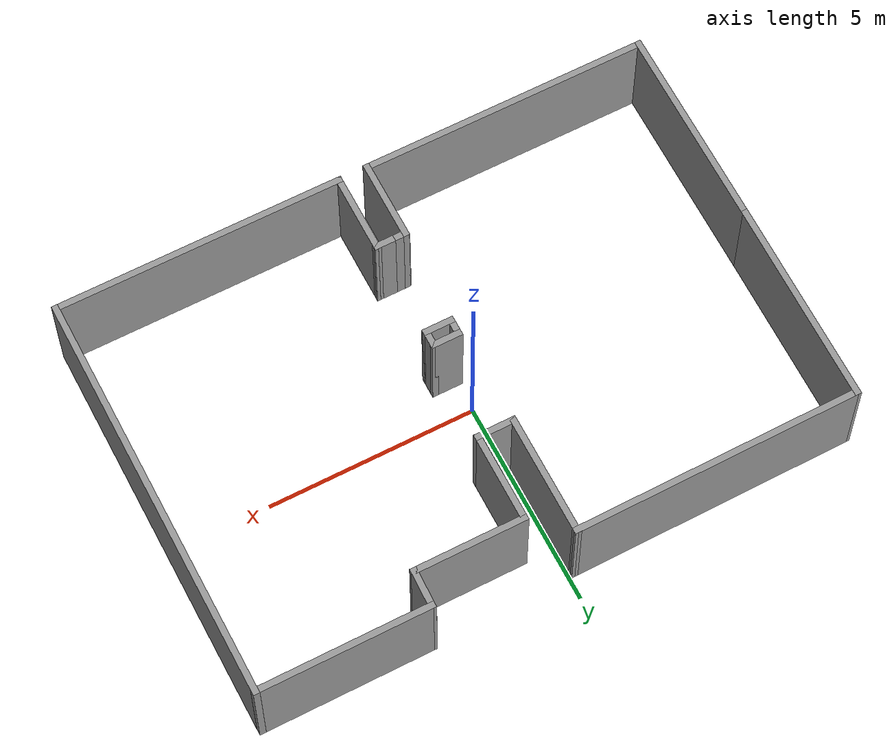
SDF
<?xml version='1.0'?>
<sdf version='1.7'>

  <model name='CoboDeck'>
    <pose>0.205519 -0.403577 0 0 -0 0</pose>
    <link name='Wall_10'>
      <collision name='Wall_10_Collision'>
        <geometry>
          <box>
            <size>2 0.15 2.5</size>
          </box>
        </geometry>
        <pose>0 0 1.25 0 -0 0</pose>
      </collision>
      <visual name='Wall_10_Visual'>
        <pose>0 0 1.25 0 -0 0</pose>
        <geometry>
          <box>
            <size>2 0.15 2.5</size>
          </box>
        </geometry>
        <material>
          <script>
            <uri>file://media/materials/scripts/gazebo.material</uri>
            <name>Gazebo/Grey</name>
          </script>
          <ambient>1 1 1 1</ambient>
        </material>
        <meta>
          <layer>0</layer>
        </meta>
      </visual>
      <pose>-0.349626 -4.00093 0 0 -0 1.5708</pose>
    </link>
    <link name='Wall_11'>
      <collision name='Wall_11_Collision'>
        <geometry>
          <box>
            <size>0.5 0.15 2.5</size>
          </box>
        </geometry>
        <pose>0 0 1.25 0 -0 0</pose>
      </collision>
      <visual name='Wall_11_Visual'>
        <pose>0 0 1.25 0 -0 0</pose>
        <geometry>
          <box>
            <size>0.5 0.15 2.5</size>
          </box>
        </geometry>
        <material>
          <script>
            <uri>file://media/materials/scripts/gazebo.material</uri>
            <name>Gazebo/Grey</name>
          </script>
          <ambient>1 1 1 1</ambient>
        </material>
        <meta>
          <layer>0</layer>
        </meta>
      </visual>
      <pose>-0.174626 -3.07593 0 0 -0 0</pose>
    </link>
    <link name='Wall_12'>
      <collision name='Wall_12_Collision'>
        <geometry>
          <box>
            <size>0.5 0.15 2.5</size>
          </box>
        </geometry>
        <pose>0 0 1.25 0 -0 0</pose>
      </collision>
      <visual name='Wall_12_Visual'>
        <pose>0 0 1.25 0 -0 0</pose>
        <geometry>
          <box>
            <size>0.5 0.15 2.5</size>
          </box>
        </geometry>
        <material>
          <script>
            <uri>file://media/materials/scripts/gazebo.material</uri>
            <name>Gazebo/Grey</name>
          </script>
          <ambient>1 1 1 1</ambient>
        </material>
        <meta>
          <layer>0</layer>
        </meta>
      </visual>
      <pose>0.175374 -3.07593 0 0 -0 0</pose>
    </link>
    <link name='Wall_13'>
      <collision name='Wall_13_Collision'>
        <geometry>
          <box>
            <size>2 0.15 2.5</size>
          </box>
        </geometry>
        <pose>0 0 1.25 0 -0 0</pose>
      </collision>
      <visual name='Wall_13_Visual'>
        <pose>0 0 1.25 0 -0 0</pose>
        <geometry>
          <box>
            <size>2 0.15 2.5</size>
          </box>
        </geometry>
        <material>
          <script>
            <uri>file://media/materials/scripts/gazebo.material</uri>
            <name>Gazebo/Grey</name>
          </script>
          <ambient>1 1 1 1</ambient>
        </material>
        <meta>
          <layer>0</layer>
        </meta>
      </visual>
      <pose>0.34999 -4.00093 0 0 -0 -1.57121</pose>
    </link>
    <link name='Wall_14'>
      <collision name='Wall_14_Collision'>
        <geometry>
          <box>
            <size>7 0.15 2.5</size>
          </box>
        </geometry>
        <pose>0 0 1.25 0 -0 0</pose>
      </collision>
      <visual name='Wall_14_Visual'>
        <pose>0 0 1.25 0 -0 0</pose>
        <geometry>
          <box>
            <size>7 0.15 2.5</size>
          </box>
        </geometry>
        <material>
          <script>
            <uri>file://media/materials/scripts/gazebo.material</uri>
            <name>Gazebo/Grey</name>
          </script>
          <ambient>1 1 1 1</ambient>
        </material>
        <meta>
          <layer>0</layer>
        </meta>
      </visual>
      <pose>3.77499 -4.92593 0 0 -0 0</pose>
    </link>
    <link name='Wall_17'>
      <collision name='Wall_17_Collision'>
        <geometry>
          <box>
            <size>10 0.15 2.5</size>
          </box>
        </geometry>
        <pose>0 0 1.25 0 -0 0</pose>
      </collision>
      <visual name='Wall_17_Visual'>
        <pose>0 0 1.25 0 -0 0</pose>
        <geometry>
          <box>
            <size>10 0.15 2.5</size>
          </box>
        </geometry>
        <material>
          <script>
            <uri>file://media/materials/scripts/gazebo.material</uri>
            <name>Gazebo/Grey</name>
          </script>
          <ambient>1 1 1 1</ambient>
        </material>
        <meta>
          <layer>0</layer>
        </meta>
      </visual>
      <pose>7.19999 -0.00093 0 0 -0 1.5708</pose>
    </link>
    <link name='Wall_18'>
      <collision name='Wall_18_Collision'>
        <geometry>
          <box>
            <size>4.22637 0.15 2.5</size>
          </box>
        </geometry>
        <pose>0 0 1.25 0 -0 0</pose>
      </collision>
      <visual name='Wall_18_Visual'>
        <pose>0 0 1.25 0 -0 0</pose>
        <geometry>
          <box>
            <size>4.22637 0.15 2.5</size>
          </box>
        </geometry>
        <material>
          <script>
            <uri>file://media/materials/scripts/gazebo.material</uri>
            <name>Gazebo/Grey</name>
          </script>
          <ambient>1 1 1 1</ambient>
        </material>
        <meta>
          <layer>0</layer>
        </meta>
      </visual>
      <pose>5.1618 4.92407 0 0 -0 3.14159</pose>
    </link>
    <link name='Wall_20'>
      <collision name='Wall_20_Collision'>
        <geometry>
          <box>
            <size>1 0.15 2.5</size>
          </box>
        </geometry>
        <pose>0 0 1.25 0 -0 0</pose>
      </collision>
      <visual name='Wall_20_Visual'>
        <pose>0 0 1.25 0 -0 0</pose>
        <geometry>
          <box>
            <size>1 0.15 2.5</size>
          </box>
        </geometry>
        <material>
          <script>
            <uri>file://media/materials/scripts/gazebo.material</uri>
            <name>Gazebo/Grey</name>
          </script>
          <ambient>1 1 1 1</ambient>
        </material>
        <meta>
          <layer>0</layer>
        </meta>
      </visual>
      <pose>3.1118 4.49907 0 0 -0 -1.59859</pose>
    </link>
    <link name='Wall_21'>
      <collision name='Wall_21_Collision'>
        <geometry>
          <box>
            <size>2.75 0.15 2.5</size>
          </box>
        </geometry>
        <pose>0 0 1.25 0 -0 0</pose>
      </collision>
      <visual name='Wall_21_Visual'>
        <pose>0 0 1.25 0 -0 0</pose>
        <geometry>
          <box>
            <size>2.75 0.15 2.5</size>
          </box>
        </geometry>
        <material>
          <script>
            <uri>file://media/materials/scripts/gazebo.material</uri>
            <name>Gazebo/Grey</name>
          </script>
          <ambient>1 1 1 1</ambient>
        </material>
        <meta>
          <layer>0</layer>
        </meta>
      </visual>
      <pose>1.79999 4.07407 0 0 -0 3.14159</pose>
    </link>
    <link name='Wall_22'>
      <collision name='Wall_22_Collision'>
        <geometry>
          <box>
            <size>2.25 0.15 2.5</size>
          </box>
        </geometry>
        <pose>0 0 1.25 0 -0 0</pose>
      </collision>
      <visual name='Wall_22_Visual'>
        <pose>0 0 1.25 0 -0 0</pose>
        <geometry>
          <box>
            <size>2.25 0.15 2.5</size>
          </box>
        </geometry>
        <material>
          <script>
            <uri>file://media/materials/scripts/gazebo.material</uri>
            <name>Gazebo/Grey</name>
          </script>
          <ambient>1 1 1 1</ambient>
        </material>
        <meta>
          <layer>0</layer>
        </meta>
      </visual>
      <pose>0.49999 3.02407 0 0 -0 -1.5708</pose>
    </link>
    <link name='Wall_23'>
      <collision name='Wall_23_Collision'>
        <geometry>
          <box>
            <size>1 0.15 2.5</size>
          </box>
        </geometry>
        <pose>0 0 1.25 0 -0 0</pose>
      </collision>
      <visual name='Wall_23_Visual'>
        <pose>0 0 1.25 0 -0 0</pose>
        <geometry>
          <box>
            <size>1 0.15 2.5</size>
          </box>
        </geometry>
        <material>
          <script>
            <uri>file://media/materials/scripts/gazebo.material</uri>
            <name>Gazebo/Grey</name>
          </script>
          <ambient>1 1 1 1</ambient>
        </material>
        <meta>
          <layer>0</layer>
        </meta>
      </visual>
      <pose>0.07499 1.97407 0 0 -0 3.14159</pose>
    </link>
    <link name='Wall_24'>
      <collision name='Wall_24_Collision'>
        <geometry>
          <box>
            <size>3 0.15 2.5</size>
          </box>
        </geometry>
        <pose>0 0 1.25 0 -0 0</pose>
      </collision>
      <visual name='Wall_24_Visual'>
        <pose>0 0 1.25 0 -0 0</pose>
        <geometry>
          <box>
            <size>3 0.15 2.5</size>
          </box>
        </geometry>
        <material>
          <script>
            <uri>file://media/materials/scripts/gazebo.material</uri>
            <name>Gazebo/Grey</name>
          </script>
          <ambient>1 1 1 1</ambient>
        </material>
        <meta>
          <layer>0</layer>
        </meta>
      </visual>
      <pose>-0.35001 3.39907 0 0 -0 1.5708</pose>
    </link>
    <link name='Wall_25'>
      <collision name='Wall_25_Collision'>
        <geometry>
          <box>
            <size>6.97617 0.15 2.5</size>
          </box>
        </geometry>
        <pose>0 0 1.25 0 -0 0</pose>
      </collision>
      <visual name='Wall_25_Visual'>
        <pose>0 0 1.25 0 -0 0</pose>
        <geometry>
          <box>
            <size>6.97617 0.15 2.5</size>
          </box>
        </geometry>
        <material>
          <script>
            <uri>file://media/materials/scripts/gazebo.material</uri>
            <name>Gazebo/Grey</name>
          </script>
          <ambient>1 1 1 1</ambient>
        </material>
        <meta>
          <layer>0</layer>
        </meta>
      </visual>
      <pose>-3.76301 4.79907 0 0 -0 -3.13427</pose>
    </link>
    <link name='Wall_28'>
      <collision name='Wall_28_Collision'>
        <geometry>
          <box>
            <size>0.75 0.15 2.5</size>
          </box>
        </geometry>
        <pose>0 0 1.25 0 -0 0</pose>
      </collision>
      <visual name='Wall_28_Visual'>
        <pose>0 0 1.25 0 -0 0</pose>
        <geometry>
          <box>
            <size>0.75 0.15 2.5</size>
          </box>
        </geometry>
        <material>
          <script>
            <uri>file://media/materials/scripts/gazebo.material</uri>
            <name>Gazebo/Grey</name>
          </script>
          <ambient>1 1 1 1</ambient>
        </material>
        <meta>
          <layer>0</layer>
        </meta>
      </visual>
      <pose>0.042009 -0.384229 0 0 -0 3.14159</pose>
    </link>
    <link name='Wall_29'>
      <collision name='Wall_29_Collision'>
        <geometry>
          <box>
            <size>0.5 0.15 2.5</size>
          </box>
        </geometry>
        <pose>0 0 1.25 0 -0 0</pose>
      </collision>
      <visual name='Wall_29_Visual'>
        <pose>0 0 1.25 0 -0 0</pose>
        <geometry>
          <box>
            <size>0.5 0.15 2.5</size>
          </box>
        </geometry>
        <material>
          <script>
            <uri>file://media/materials/scripts/gazebo.material</uri>
            <name>Gazebo/Grey</name>
          </script>
          <ambient>1 1 1 1</ambient>
        </material>
        <meta>
          <layer>0</layer>
        </meta>
      </visual>
      <pose>-0.257991 -0.559229 0 0 -0 -1.5708</pose>
    </link>
    <link name='Wall_30'>
      <collision name='Wall_30_Collision'>
        <geometry>
          <box>
            <size>0.75 0.15 2.5</size>
          </box>
        </geometry>
        <pose>0 0 1.25 0 -0 0</pose>
      </collision>
      <visual name='Wall_30_Visual'>
        <pose>0 0 1.25 0 -0 0</pose>
        <geometry>
          <box>
            <size>0.75 0.15 2.5</size>
          </box>
        </geometry>
        <material>
          <script>
            <uri>file://media/materials/scripts/gazebo.material</uri>
            <name>Gazebo/Grey</name>
          </script>
          <ambient>1 1 1 1</ambient>
        </material>
        <meta>
          <layer>0</layer>
        </meta>
      </visual>
      <pose>0.042009 -0.734229 0 0 -0 0</pose>
    </link>
    <link name='Wall_31'>
      <collision name='Wall_31_Collision'>
        <geometry>
          <box>
            <size>0.5 0.15 2.5</size>
          </box>
        </geometry>
        <pose>0 0 1.25 0 -0 0</pose>
      </collision>
      <visual name='Wall_31_Visual'>
        <pose>0 0 1.25 0 -0 0</pose>
        <geometry>
          <box>
            <size>0.5 0.15 2.5</size>
          </box>
        </geometry>
        <material>
          <script>
            <uri>file://media/materials/scripts/gazebo.material</uri>
            <name>Gazebo/Grey</name>
          </script>
          <ambient>1 1 1 1</ambient>
        </material>
        <meta>
          <layer>0</layer>
        </meta>
      </visual>
      <pose>0.342009 -0.559229 0 0 -0 1.5708</pose>
    </link>
    <link name='Wall_5'>
      <collision name='Wall_5_Collision'>
        <geometry>
          <box>
            <size>5 0.15 2.5</size>
          </box>
        </geometry>
        <pose>0 0 1.25 0 -0 0</pose>
      </collision>
      <visual name='Wall_5_Visual'>
        <pose>0 0 1.25 0 -0 0</pose>
        <geometry>
          <box>
            <size>5 0.15 2.5</size>
          </box>
        </geometry>
        <material>
          <script>
            <uri>file://media/materials/scripts/gazebo.material</uri>
            <name>Gazebo/Grey</name>
          </script>
          <ambient>1 1 1 1</ambient>
        </material>
        <meta>
          <layer>0</layer>
        </meta>
      </visual>
      <pose>-7.18781 2.34907 0 0 -0 1.56593</pose>
    </link>
    <link name='Wall_8'>
      <collision name='Wall_8_Collision'>
        <geometry>
          <box>
            <size>5 0.15 2.5</size>
          </box>
        </geometry>
        <pose>0 0 1.25 0 -0 0</pose>
      </collision>
      <visual name='Wall_8_Visual'>
        <pose>0 0 1.25 0 -0 0</pose>
        <geometry>
          <box>
            <size>5 0.15 2.5</size>
          </box>
        </geometry>
        <material>
          <script>
            <uri>file://media/materials/scripts/gazebo.material</uri>
            <name>Gazebo/Grey</name>
          </script>
          <ambient>1 1 1 1</ambient>
        </material>
        <meta>
          <layer>0</layer>
        </meta>
      </visual>
      <pose>-7.19963 -2.50093 0 0 -0 -1.5708</pose>
    </link>
    <link name='Wall_9'>
      <collision name='Wall_9_Collision'>
        <geometry>
          <box>
            <size>7 0.15 2.5</size>
          </box>
        </geometry>
        <pose>0 0 1.25 0 -0 0</pose>
      </collision>
      <visual name='Wall_9_Visual'>
        <pose>0 0 1.25 0 -0 0</pose>
        <geometry>
          <box>
            <size>7 0.15 2.5</size>
          </box>
        </geometry>
        <material>
          <script>
            <uri>file://media/materials/scripts/gazebo.material</uri>
            <name>Gazebo/Grey</name>
          </script>
          <ambient>1 1 1 1</ambient>
        </material>
        <meta>
          <layer>0</layer>
        </meta>
      </visual>
      <pose>-3.77463 -4.92593 0 0 -0 0</pose>
    </link>
    <static>1</static>
  </model>
</sdf>
